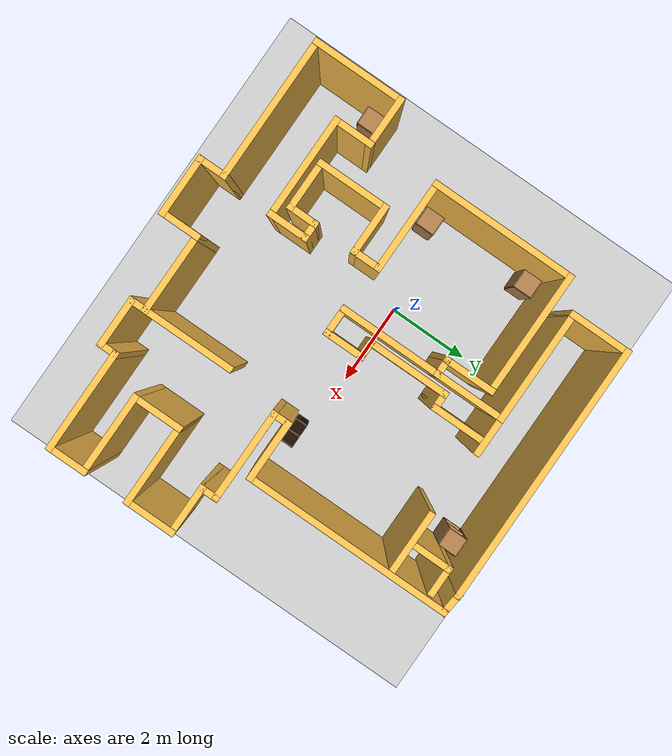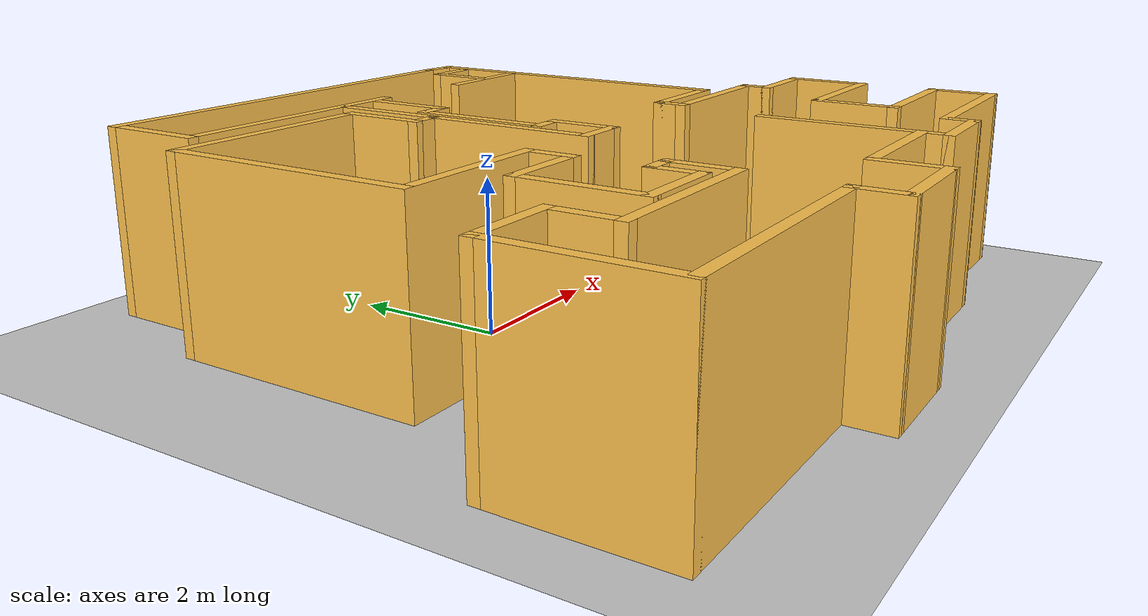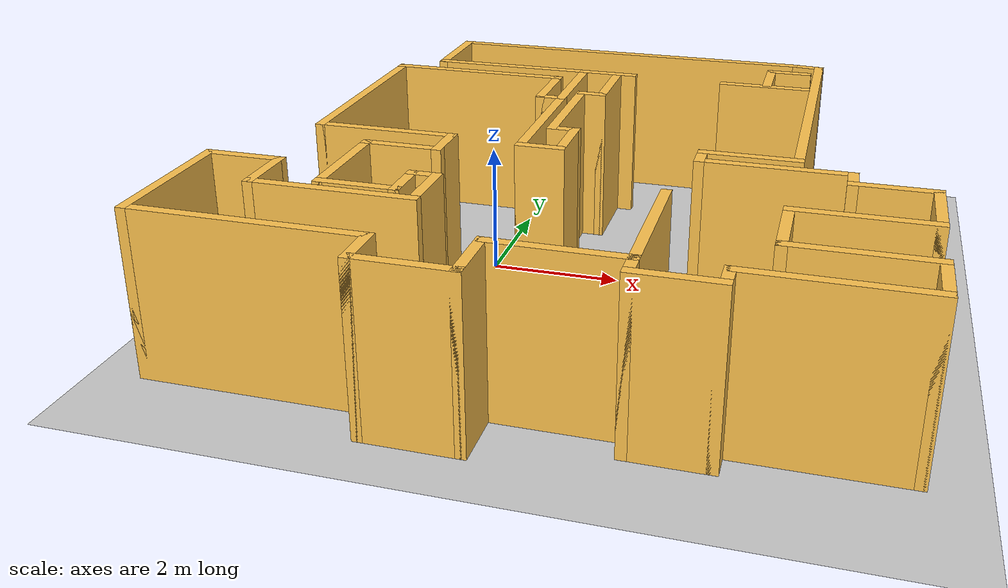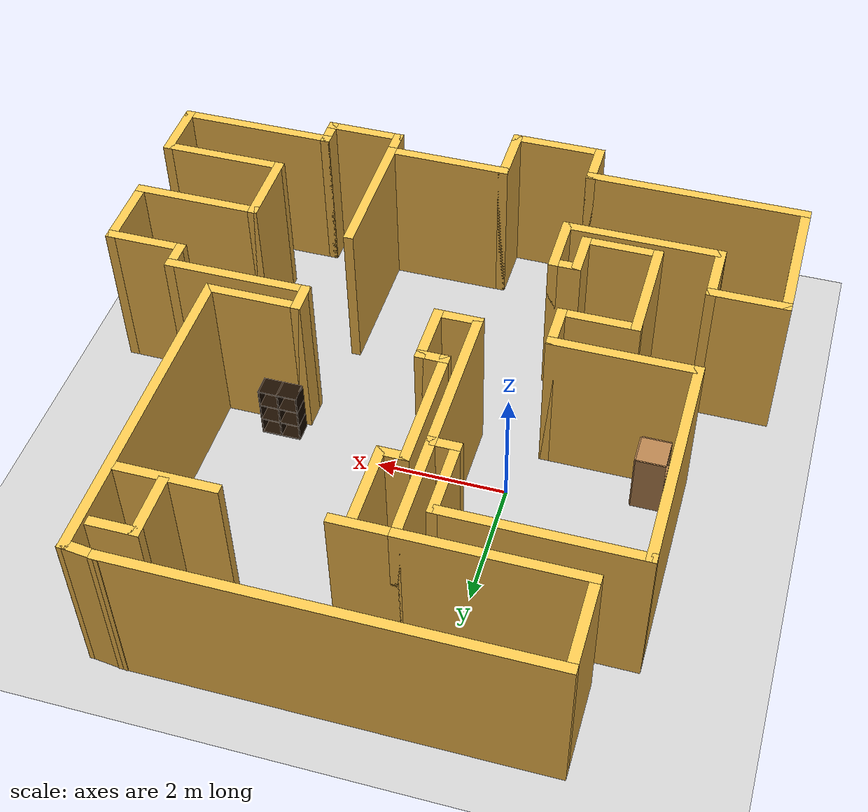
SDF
<sdf version="1.6">
 <world name="default">
  <light name="sun" type="directional">
   <pose>0 0 10 0 -0 0</pose>
   <diffuse>0.8 0.8 0.8 1</diffuse>
   <specular>0.2 0.2 0.2 1</specular>
   <attenuation>
    <range>1000</range>
    <constant>0.9</constant>
    <linear>0.01</linear>
    <quadratic>0.001</quadratic>
   </attenuation>
   <direction>-0.5 0.1 -0.9</direction>
  </light>
  <model name="ground_plane">
   <static>1</static>
   <link name="link">
    <collision name="collision">
     <geometry><plane><normal>0 0 1</normal><size>100 100</size></plane></geometry>
     <surface>
      <contact><collide_bitmask>65535</collide_bitmask></contact>
      <friction><ode><mu>100</mu><mu2>50</mu2></ode></friction>
     </surface>
    </collision>
    <visual name="visual">
     <cast_shadows>0</cast_shadows>
     <geometry><plane><normal>0 0 1</normal><size>100 100</size></plane></geometry>
     <material>
      <script><uri>file://media/materials/scripts/gazebo.material</uri><name>Gazebo/Grey</name></script>
     </material>
    </visual>
   </link>
  </model>
  <gravity>0 0 -9.8</gravity>
  <magnetic_field>6e-06 2.3e-05 -4.2e-05</magnetic_field>
  <atmosphere type="adiabatic"/>
  <physics name="default_physics" default="0" type="ode">
   <max_step_size>0.001</max_step_size>
   <real_time_factor>1</real_time_factor>
   <real_time_update_rate>1000</real_time_update_rate>
  </physics>
  <scene><ambient>0.4 0.4 0.4 1</ambient><background>0.7 0.7 0.7 1</background><shadows>1</shadows></scene>
  <audio><device>default</device></audio>
  <spherical_coordinates>
   <surface_model>EARTH_WGS84</surface_model>
   <latitude_deg>0</latitude_deg>
   <longitude_deg>0</longitude_deg>
   <elevation>0</elevation>
   <heading_deg>0</heading_deg>
  </spherical_coordinates>
  <model name="map_78">
   <pose>1.51541 -0.40154 0 0 -0 0</pose>
   <link name="Wall_0">
    <collision name="Wall_0_Collision">
     <geometry><box><size>6.25 0.15 2.5</size></box></geometry>
     <pose>0 0 1.25 0 -0 0</pose>
    </collision>
    <visual name="Wall_0_Visual">
     <pose>0 0 1.25 0 -0 0</pose>
     <geometry><box><size>6.25 0.15 2.5</size></box></geometry>
     <material>
      <script><uri>file://media/materials/scripts/gazebo.material</uri><name>Gazebo/Grey</name></script>
      <ambient>1 0.764706 0.305882 1</ambient>
     </material>
     <meta><layer>0</layer></meta>
    </visual>
    <pose>-0.35 4.74609 0 0 -0 3.14159</pose>
   </link>
   <link name="Wall_12">
    <collision name="Wall_12_Collision">
     <geometry><box><size>0.75 0.15 2.5</size></box></geometry>
     <pose>0 0 1.25 0 -0 0</pose>
    </collision>
    <visual name="Wall_12_Visual">
     <pose>0 0 1.25 0 -0 0</pose>
     <geometry><box><size>0.75 0.15 2.5</size></box></geometry>
     <material>
      <script><uri>file://media/materials/scripts/gazebo.material</uri><name>Gazebo/Grey</name></script>
      <ambient>1 0.764706 0.305882 1</ambient>
     </material>
     <meta><layer>0</layer></meta>
    </visual>
    <pose>-1.9 -0.753912 0 0 -0 -1.5708</pose>
   </link>
   <link name="Wall_13">
    <collision name="Wall_13_Collision">
     <geometry><box><size>1.25 0.15 2.5</size></box></geometry>
     <pose>0 0 1.25 0 -0 0</pose>
    </collision>
    <visual name="Wall_13_Visual">
     <pose>0 0 1.25 0 -0 0</pose>
     <geometry><box><size>1.25 0.15 2.5</size></box></geometry>
     <material>
      <script><uri>file://media/materials/scripts/gazebo.material</uri><name>Gazebo/Grey</name></script>
      <ambient>1 0.764706 0.305882 1</ambient>
     </material>
     <meta><layer>0</layer></meta>
    </visual>
    <pose>-2.45 -1.05391 0 0 -0 3.14159</pose>
   </link>
   <link name="Wall_14">
    <collision name="Wall_14_Collision">
     <geometry><box><size>1.75 0.15 2.5</size></box></geometry>
     <pose>0 0 1.25 0 -0 0</pose>
    </collision>
    <visual name="Wall_14_Visual">
     <pose>0 0 1.25 0 -0 0</pose>
     <geometry><box><size>1.75 0.15 2.5</size></box></geometry>
     <material>
      <script><uri>file://media/materials/scripts/gazebo.material</uri><name>Gazebo/Grey</name></script>
      <ambient>1 0.764706 0.305882 1</ambient>
     </material>
     <meta><layer>0</layer></meta>
    </visual>
    <pose>-3 -1.85391 0 0 -0 -1.5708</pose>
   </link>
   <link name="Wall_15">
    <collision name="Wall_15_Collision">
     <geometry><box><size>1.25 0.15 2.5</size></box></geometry>
     <pose>0 0 1.25 0 -0 0</pose>
    </collision>
    <visual name="Wall_15_Visual">
     <pose>0 0 1.25 0 -0 0</pose>
     <geometry><box><size>1.25 0.15 2.5</size></box></geometry>
     <material>
      <script><uri>file://media/materials/scripts/gazebo.material</uri><name>Gazebo/Grey</name></script>
      <ambient>1 0.764706 0.305882 1</ambient>
     </material>
     <meta><layer>0</layer></meta>
    </visual>
    <pose>-2.45 -2.65391 0 0 -0 0</pose>
   </link>
   <link name="Wall_16">
    <collision name="Wall_16_Collision">
     <geometry><box><size>0.75 0.15 2.5</size></box></geometry>
     <pose>0 0 1.25 0 -0 0</pose>
    </collision>
    <visual name="Wall_16_Visual">
     <pose>0 0 1.25 0 -0 0</pose>
     <geometry><box><size>0.75 0.15 2.5</size></box></geometry>
     <material>
      <script><uri>file://media/materials/scripts/gazebo.material</uri><name>Gazebo/Grey</name></script>
      <ambient>1 0.764706 0.305882 1</ambient>
     </material>
     <meta><layer>0</layer></meta>
    </visual>
    <pose>-1.9 -2.35391 0 0 -0 1.5708</pose>
   </link>
   <link name="Wall_17">
    <collision name="Wall_17_Collision">
     <geometry><box><size>0.5 0.15 2.5</size></box></geometry>
     <pose>0 0 1.25 0 -0 0</pose>
    </collision>
    <visual name="Wall_17_Visual">
     <pose>0 0 1.25 0 -0 0</pose>
     <geometry><box><size>0.5 0.15 2.5</size></box></geometry>
     <material>
      <script><uri>file://media/materials/scripts/gazebo.material</uri><name>Gazebo/Grey</name></script>
      <ambient>1 0.764706 0.305882 1</ambient>
     </material>
     <meta><layer>0</layer></meta>
    </visual>
    <pose>-1.725 -2.05391 0 0 -0 0</pose>
   </link>
   <link name="Wall_18">
    <collision name="Wall_18_Collision">
     <geometry><box><size>1 0.15 2.5</size></box></geometry>
     <pose>0 0 1.25 0 -0 0</pose>
    </collision>
    <visual name="Wall_18_Visual">
     <pose>0 0 1.25 0 -0 0</pose>
     <geometry><box><size>1 0.15 2.5</size></box></geometry>
     <material>
      <script><uri>file://media/materials/scripts/gazebo.material</uri><name>Gazebo/Grey</name></script>
      <ambient>1 0.764706 0.305882 1</ambient>
     </material>
     <meta><layer>0</layer></meta>
    </visual>
    <pose>-1.55 -2.47891 0 0 -0 -1.5708</pose>
   </link>
   <link name="Wall_19">
    <collision name="Wall_19_Collision">
     <geometry><box><size>2.5 0.15 2.5</size></box></geometry>
     <pose>0 0 1.25 0 -0 0</pose>
    </collision>
    <visual name="Wall_19_Visual">
     <pose>0 0 1.25 0 -0 0</pose>
     <geometry><box><size>2.5 0.15 2.5</size></box></geometry>
     <material>
      <script><uri>file://media/materials/scripts/gazebo.material</uri><name>Gazebo/Grey</name></script>
      <ambient>1 0.764706 0.305882 1</ambient>
     </material>
     <meta><layer>0</layer></meta>
    </visual>
    <pose>-2.725 -2.90391 0 0 -0 3.14159</pose>
   </link>
   <link name="Wall_2">
    <collision name="Wall_2_Collision">
     <geometry><box><size>1.5 0.15 2.5</size></box></geometry>
     <pose>0 0 1.25 0 -0 0</pose>
    </collision>
    <visual name="Wall_2_Visual">
     <pose>0 0 1.25 0 -0 0</pose>
     <geometry><box><size>1.5 0.15 2.5</size></box></geometry>
     <material>
      <script><uri>file://media/materials/scripts/gazebo.material</uri><name>Gazebo/Grey</name></script>
      <ambient>1 0.764706 0.305882 1</ambient>
     </material>
     <meta><layer>0</layer></meta>
    </visual>
    <pose>-3.4 4.07109 0 0 -0 -1.5708</pose>
   </link>
   <link name="Wall_20">
    <collision name="Wall_20_Collision">
     <geometry><box><size>1 0.15 2.5</size></box></geometry>
     <pose>0 0 1.25 0 -0 0</pose>
    </collision>
    <visual name="Wall_20_Visual">
     <pose>0 0 1.25 0 -0 0</pose>
     <geometry><box><size>1 0.15 2.5</size></box></geometry>
     <material>
      <script><uri>file://media/materials/scripts/gazebo.material</uri><name>Gazebo/Grey</name></script>
      <ambient>1 0.764706 0.305882 1</ambient>
     </material>
     <meta><layer>0</layer></meta>
    </visual>
    <pose>-3.9 -2.47891 0 0 -0 1.5708</pose>
   </link>
   <link name="Wall_21">
    <collision name="Wall_21_Collision">
     <geometry><box><size>1.25 0.15 2.5</size></box></geometry>
     <pose>0 0 1.25 0 -0 0</pose>
    </collision>
    <visual name="Wall_21_Visual">
     <pose>0 0 1.25 0 -0 0</pose>
     <geometry><box><size>1.25 0.15 2.5</size></box></geometry>
     <material>
      <script><uri>file://media/materials/scripts/gazebo.material</uri><name>Gazebo/Grey</name></script>
      <ambient>1 0.764706 0.305882 1</ambient>
     </material>
     <meta><layer>0</layer></meta>
    </visual>
    <pose>-4.45 -2.05391 0 0 -0 3.14159</pose>
   </link>
   <link name="Wall_22">
    <collision name="Wall_22_Collision">
     <geometry><box><size>2.25 0.15 2.5</size></box></geometry>
     <pose>0 0 1.25 0 -0 0</pose>
    </collision>
    <visual name="Wall_22_Visual">
     <pose>0 0 1.25 0 -0 0</pose>
     <geometry><box><size>2.25 0.15 2.5</size></box></geometry>
     <material>
      <script><uri>file://media/materials/scripts/gazebo.material</uri><name>Gazebo/Grey</name></script>
      <ambient>1 0.764706 0.305882 1</ambient>
     </material>
     <meta><layer>0</layer></meta>
    </visual>
    <pose>-5 -3.10391 0 0 -0 -1.5708</pose>
   </link>
   <link name="Wall_23">
    <collision name="Wall_23_Collision">
     <geometry><box><size>3.5 0.15 2.5</size></box></geometry>
     <pose>0 0 1.25 0 -0 0</pose>
    </collision>
    <visual name="Wall_23_Visual">
     <pose>0 0 1.25 0 -0 0</pose>
     <geometry><box><size>3.5 0.15 2.5</size></box></geometry>
     <material>
      <script><uri>file://media/materials/scripts/gazebo.material</uri><name>Gazebo/Grey</name></script>
      <ambient>1 0.764706 0.305882 1</ambient>
     </material>
     <meta><layer>0</layer></meta>
    </visual>
    <pose>-3.325 -4.15391 0 0 -0 0</pose>
   </link>
   <link name="Wall_24">
    <collision name="Wall_24_Collision">
     <geometry><box><size>0.75 0.15 2.5</size></box></geometry>
     <pose>0 0 1.25 0 -0 0</pose>
    </collision>
    <visual name="Wall_24_Visual">
     <pose>0 0 1.25 0 -0 0</pose>
     <geometry><box><size>0.75 0.15 2.5</size></box></geometry>
     <material>
      <script><uri>file://media/materials/scripts/gazebo.material</uri><name>Gazebo/Grey</name></script>
      <ambient>1 0.764706 0.305882 1</ambient>
     </material>
     <meta><layer>0</layer></meta>
    </visual>
    <pose>-1.65 -4.45391 0 0 -0 -1.5708</pose>
   </link>
   <link name="Wall_25">
    <collision name="Wall_25_Collision">
     <geometry><box><size>1.5 0.15 2.5</size></box></geometry>
     <pose>0 0 1.25 0 -0 0</pose>
    </collision>
    <visual name="Wall_25_Visual">
     <pose>0 0 1.25 0 -0 0</pose>
     <geometry><box><size>1.5 0.15 2.5</size></box></geometry>
     <material>
      <script><uri>file://media/materials/scripts/gazebo.material</uri><name>Gazebo/Grey</name></script>
      <ambient>1 0.764706 0.305882 1</ambient>
     </material>
     <meta><layer>0</layer></meta>
    </visual>
    <pose>-0.975 -4.75391 0 0 -0 0</pose>
   </link>
   <link name="Wall_26">
    <collision name="Wall_26_Collision">
     <geometry><box><size>1 0.15 2.5</size></box></geometry>
     <pose>0 0 1.25 0 -0 0</pose>
    </collision>
    <visual name="Wall_26_Visual">
     <pose>0 0 1.25 0 -0 0</pose>
     <geometry><box><size>1 0.15 2.5</size></box></geometry>
     <material>
      <script><uri>file://media/materials/scripts/gazebo.material</uri><name>Gazebo/Grey</name></script>
      <ambient>1 0.764706 0.305882 1</ambient>
     </material>
     <meta><layer>0</layer></meta>
    </visual>
    <pose>-0.3 -4.32891 0 0 -0 1.5708</pose>
   </link>
   <link name="Wall_27">
    <collision name="Wall_27_Collision">
     <geometry><box><size>2 0.15 2.5</size></box></geometry>
     <pose>0 0 1.25 0 -0 0</pose>
    </collision>
    <visual name="Wall_27_Visual">
     <pose>0 0 1.25 0 -0 0</pose>
     <geometry><box><size>2 0.15 2.5</size></box></geometry>
     <material>
      <script><uri>file://media/materials/scripts/gazebo.material</uri><name>Gazebo/Grey</name></script>
      <ambient>1 0.764706 0.305882 1</ambient>
     </material>
     <meta><layer>0</layer></meta>
    </visual>
    <pose>0.625 -3.90391 0 0 -0 0</pose>
   </link>
   <link name="Wall_28">
    <collision name="Wall_28_Collision">
     <geometry><box><size>0.5 0.15 2.5</size></box></geometry>
     <pose>0 0 1.25 0 -0 0</pose>
    </collision>
    <visual name="Wall_28_Visual">
     <pose>0 0 1.25 0 -0 0</pose>
     <geometry><box><size>0.5 0.15 2.5</size></box></geometry>
     <material>
      <script><uri>file://media/materials/scripts/gazebo.material</uri><name>Gazebo/Grey</name></script>
      <ambient>1 0.764706 0.305882 1</ambient>
     </material>
     <meta><layer>0</layer></meta>
    </visual>
    <pose>1.55 -4.07891 0 0 -0 -1.5708</pose>
   </link>
   <link name="Wall_29">
    <collision name="Wall_29_Collision">
     <geometry><box><size>1.25 0.15 2.5</size></box></geometry>
     <pose>0 0 1.25 0 -0 0</pose>
    </collision>
    <visual name="Wall_29_Visual">
     <pose>0 0 1.25 0 -0 0</pose>
     <geometry><box><size>1.25 0.15 2.5</size></box></geometry>
     <material>
      <script><uri>file://media/materials/scripts/gazebo.material</uri><name>Gazebo/Grey</name></script>
      <ambient>1 0.764706 0.305882 1</ambient>
     </material>
     <meta><layer>0</layer></meta>
    </visual>
    <pose>2.1 -4.25391 0 0 -0 0</pose>
   </link>
   <link name="Wall_3">
    <collision name="Wall_3_Collision">
     <geometry><box><size>2.75 0.15 2.5</size></box></geometry>
     <pose>0 0 1.25 0 -0 0</pose>
    </collision>
    <visual name="Wall_3_Visual">
     <pose>0 0 1.25 0 -0 0</pose>
     <geometry><box><size>2.75 0.15 2.5</size></box></geometry>
     <material>
      <script><uri>file://media/materials/scripts/gazebo.material</uri><name>Gazebo/Grey</name></script>
      <ambient>1 0.764706 0.305882 1</ambient>
     </material>
     <meta><layer>0</layer></meta>
    </visual>
    <pose>-2.1 3.39609 0 0 -0 0</pose>
   </link>
   <link name="Wall_30">
    <collision name="Wall_30_Collision">
     <geometry><box><size>0.5 0.15 2.5</size></box></geometry>
     <pose>0 0 1.25 0 -0 0</pose>
    </collision>
    <visual name="Wall_30_Visual">
     <pose>0 0 1.25 0 -0 0</pose>
     <geometry><box><size>0.5 0.15 2.5</size></box></geometry>
     <material>
      <script><uri>file://media/materials/scripts/gazebo.material</uri><name>Gazebo/Grey</name></script>
      <ambient>1 0.764706 0.305882 1</ambient>
     </material>
     <meta><layer>0</layer></meta>
    </visual>
    <pose>2.65 -4.07891 0 0 -0 1.5708</pose>
   </link>
   <link name="Wall_31">
    <collision name="Wall_31_Collision">
     <geometry><box><size>2.5 0.15 2.5</size></box></geometry>
     <pose>0 0 1.25 0 -0 0</pose>
    </collision>
    <visual name="Wall_31_Visual">
     <pose>0 0 1.25 0 -0 0</pose>
     <geometry><box><size>2.5 0.15 2.5</size></box></geometry>
     <material>
      <script><uri>file://media/materials/scripts/gazebo.material</uri><name>Gazebo/Grey</name></script>
      <ambient>1 0.764706 0.305882 1</ambient>
     </material>
     <meta><layer>0</layer></meta>
    </visual>
    <pose>3.825 -3.90391 0 0 -0 0</pose>
   </link>
   <link name="Wall_32">
    <collision name="Wall_32_Collision">
     <geometry><box><size>1 0.15 2.5</size></box></geometry>
     <pose>0 0 1.25 0 -0 0</pose>
    </collision>
    <visual name="Wall_32_Visual">
     <pose>0 0 1.25 0 -0 0</pose>
     <geometry><box><size>1 0.15 2.5</size></box></geometry>
     <material>
      <script><uri>file://media/materials/scripts/gazebo.material</uri><name>Gazebo/Grey</name></script>
      <ambient>1 0.764706 0.305882 1</ambient>
     </material>
     <meta><layer>0</layer></meta>
    </visual>
    <pose>5 -3.47891 0 0 -0 1.5708</pose>
   </link>
   <link name="Wall_33">
    <collision name="Wall_33_Collision">
     <geometry><box><size>2 0.15 2.5</size></box></geometry>
     <pose>0 0 1.25 0 -0 0</pose>
    </collision>
    <visual name="Wall_33_Visual">
     <pose>0 0 1.25 0 -0 0</pose>
     <geometry><box><size>2 0.15 2.5</size></box></geometry>
     <material>
      <script><uri>file://media/materials/scripts/gazebo.material</uri><name>Gazebo/Grey</name></script>
      <ambient>1 0.764706 0.305882 1</ambient>
     </material>
     <meta><layer>0</layer></meta>
    </visual>
    <pose>4.075 -3.05391 0 0 -0 3.14159</pose>
   </link>
   <link name="Wall_34">
    <collision name="Wall_34_Collision">
     <geometry><box><size>1.25 0.15 2.5</size></box></geometry>
     <pose>0 0 1.25 0 -0 0</pose>
    </collision>
    <visual name="Wall_34_Visual">
     <pose>0 0 1.25 0 -0 0</pose>
     <geometry><box><size>1.25 0.15 2.5</size></box></geometry>
     <material>
      <script><uri>file://media/materials/scripts/gazebo.material</uri><name>Gazebo/Grey</name></script>
      <ambient>1 0.764706 0.305882 1</ambient>
     </material>
     <meta><layer>0</layer></meta>
    </visual>
    <pose>3.15 -2.50391 0 0 -0 1.5708</pose>
   </link>
   <link name="Wall_35">
    <collision name="Wall_35_Collision">
     <geometry><box><size>2 0.15 2.5</size></box></geometry>
     <pose>0 0 1.25 0 -0 0</pose>
    </collision>
    <visual name="Wall_35_Visual">
     <pose>0 0 1.25 0 -0 0</pose>
     <geometry><box><size>2 0.15 2.5</size></box></geometry>
     <material>
      <script><uri>file://media/materials/scripts/gazebo.material</uri><name>Gazebo/Grey</name></script>
      <ambient>1 0.764706 0.305882 1</ambient>
     </material>
     <meta><layer>0</layer></meta>
    </visual>
    <pose>4.075 -1.95391 0 0 -0 0</pose>
   </link>
   <link name="Wall_36">
    <collision name="Wall_36_Collision">
     <geometry><box><size>1.25 0.15 2.5</size></box></geometry>
     <pose>0 0 1.25 0 -0 0</pose>
    </collision>
    <visual name="Wall_36_Visual">
     <pose>0 0 1.25 0 -0 0</pose>
     <geometry><box><size>1.25 0.15 2.5</size></box></geometry>
     <material>
      <script><uri>file://media/materials/scripts/gazebo.material</uri><name>Gazebo/Grey</name></script>
      <ambient>1 0.764706 0.305882 1</ambient>
     </material>
     <meta><layer>0</layer></meta>
    </visual>
    <pose>5 -1.40391 0 0 -0 1.5708</pose>
   </link>
   <link name="Wall_37">
    <collision name="Wall_37_Collision">
     <geometry><box><size>1.25 0.15 2.5</size></box></geometry>
     <pose>0 0 1.25 0 -0 0</pose>
    </collision>
    <visual name="Wall_37_Visual">
     <pose>0 0 1.25 0 -0 0</pose>
     <geometry><box><size>1.25 0.15 2.5</size></box></geometry>
     <material>
      <script><uri>file://media/materials/scripts/gazebo.material</uri><name>Gazebo/Grey</name></script>
      <ambient>1 0.764706 0.305882 1</ambient>
     </material>
     <meta><layer>0</layer></meta>
    </visual>
    <pose>4.45 -0.853912 0 0 -0 3.14159</pose>
   </link>
   <link name="Wall_38">
    <collision name="Wall_38_Collision">
     <geometry><box><size>0.5 0.15 2.5</size></box></geometry>
     <pose>0 0 1.25 0 -0 0</pose>
    </collision>
    <visual name="Wall_38_Visual">
     <pose>0 0 1.25 0 -0 0</pose>
     <geometry><box><size>0.5 0.15 2.5</size></box></geometry>
     <material>
      <script><uri>file://media/materials/scripts/gazebo.material</uri><name>Gazebo/Grey</name></script>
      <ambient>1 0.764706 0.305882 1</ambient>
     </material>
     <meta><layer>0</layer></meta>
    </visual>
    <pose>3.9 -0.678912 0 0 -0 1.5708</pose>
   </link>
   <link name="Wall_39">
    <collision name="Wall_39_Collision">
     <geometry><box><size>2.25 0.15 2.5</size></box></geometry>
     <pose>0 0 1.25 0 -0 0</pose>
    </collision>
    <visual name="Wall_39_Visual">
     <pose>0 0 1.25 0 -0 0</pose>
     <geometry><box><size>2.25 0.15 2.5</size></box></geometry>
     <material>
      <script><uri>file://media/materials/scripts/gazebo.material</uri><name>Gazebo/Grey</name></script>
      <ambient>1 0.764706 0.305882 1</ambient>
     </material>
     <meta><layer>0</layer></meta>
    </visual>
    <pose>2.85 -0.503912 0 0 -0 3.14159</pose>
   </link>
   <link name="Wall_4">
    <collision name="Wall_4_Collision">
     <geometry><box><size>1.75 0.15 2.5</size></box></geometry>
     <pose>0 0 1.25 0 -0 0</pose>
    </collision>
    <visual name="Wall_4_Visual">
     <pose>0 0 1.25 0 -0 0</pose>
     <geometry><box><size>1.75 0.15 2.5</size></box></geometry>
     <material>
      <script><uri>file://media/materials/scripts/gazebo.material</uri><name>Gazebo/Grey</name></script>
      <ambient>1 0.764706 0.305882 1</ambient>
     </material>
     <meta><layer>0</layer></meta>
    </visual>
    <pose>-0.8 2.59609 0 0 -0 -1.5708</pose>
   </link>
   <link name="Wall_46">
    <collision name="Wall_46_Collision">
     <geometry><box><size>0.5 0.15 2.5</size></box></geometry>
     <pose>0 0 1.25 0 -0 0</pose>
    </collision>
    <visual name="Wall_46_Visual">
     <pose>0 0 1.25 0 -0 0</pose>
     <geometry><box><size>0.5 0.15 2.5</size></box></geometry>
     <material>
      <script><uri>file://media/materials/scripts/gazebo.material</uri><name>Gazebo/Grey</name></script>
      <ambient>1 0.764706 0.305882 1</ambient>
     </material>
     <meta><layer>0</layer></meta>
    </visual>
    <pose>1.8 -0.328912 0 0 -0 1.5708</pose>
   </link>
   <link name="Wall_47">
    <collision name="Wall_47_Collision">
     <geometry><box><size>1.5 0.15 2.5</size></box></geometry>
     <pose>0 0 1.25 0 -0 0</pose>
    </collision>
    <visual name="Wall_47_Visual">
     <pose>0 0 1.25 0 -0 0</pose>
     <geometry><box><size>1.5 0.15 2.5</size></box></geometry>
     <material>
      <script><uri>file://media/materials/scripts/gazebo.material</uri><name>Gazebo/Grey</name></script>
      <ambient>1 0.764706 0.305882 1</ambient>
     </material>
     <meta><layer>0</layer></meta>
    </visual>
    <pose>2.475 -0.153912 0 0 -0 0</pose>
   </link>
   <link name="Wall_5">
    <collision name="Wall_5_Collision">
     <geometry><box><size>0.5 0.15 2.5</size></box></geometry>
     <pose>0 0 1.25 0 -0 0</pose>
    </collision>
    <visual name="Wall_5_Visual">
     <pose>0 0 1.25 0 -0 0</pose>
     <geometry><box><size>0.5 0.15 2.5</size></box></geometry>
     <material>
      <script><uri>file://media/materials/scripts/gazebo.material</uri><name>Gazebo/Grey</name></script>
      <ambient>1 0.764706 0.305882 1</ambient>
     </material>
     <meta><layer>0</layer></meta>
    </visual>
    <pose>-0.975 1.79609 0 0 -0 3.14159</pose>
   </link>
   <link name="Wall_50">
    <collision name="Wall_50_Collision">
     <geometry><box><size>5 0.15 2.5</size></box></geometry>
     <pose>0 0 1.25 0 -0 0</pose>
    </collision>
    <visual name="Wall_50_Visual">
     <pose>0 0 1.25 0 -0 0</pose>
     <geometry><box><size>5 0.15 2.5</size></box></geometry>
     <material>
      <script><uri>file://media/materials/scripts/gazebo.material</uri><name>Gazebo/Grey</name></script>
      <ambient>1 0.764706 0.305882 1</ambient>
     </material>
     <meta><layer>0</layer></meta>
    </visual>
    <pose>3.15 2.27109 0 0 -0 1.5708</pose>
   </link>
   <link name="Wall_51">
    <collision name="Wall_51_Collision">
     <geometry><box><size>0.602769 0.15 2.5</size></box></geometry>
     <pose>0 0 1.25 0 -0 0</pose>
    </collision>
    <visual name="Wall_51_Visual">
     <pose>0 0 1.25 0 -0 0</pose>
     <geometry><box><size>0.602769 0.15 2.5</size></box></geometry>
     <material>
      <script><uri>file://media/materials/scripts/gazebo.material</uri><name>Gazebo/Grey</name></script>
      <ambient>1 0.764706 0.305882 1</ambient>
     </material>
     <meta><layer>0</layer></meta>
    </visual>
    <pose>2.925 4.72109 0 0 -0 3.03093</pose>
   </link>
   <link name="Wall_53">
    <collision name="Wall_53_Collision">
     <geometry><box><size>1.5 0.15 2.5</size></box></geometry>
     <pose>0 0 1.25 0 -0 0</pose>
    </collision>
    <visual name="Wall_53_Visual">
     <pose>0 0 1.25 0 -0 0</pose>
     <geometry><box><size>1.5 0.15 2.5</size></box></geometry>
     <material>
      <script><uri>file://media/materials/scripts/gazebo.material</uri><name>Gazebo/Grey</name></script>
      <ambient>1 0.764706 0.305882 1</ambient>
     </material>
     <meta><layer>0</layer></meta>
    </visual>
    <pose>2.33759 3.33628 0 0 -0 0</pose>
   </link>
   <link name="Wall_55">
    <collision name="Wall_55_Collision">
     <geometry><box><size>0.75 0.15 2.5</size></box></geometry>
     <pose>0 0 1.25 0 -0 0</pose>
    </collision>
    <visual name="Wall_55_Visual">
     <pose>0 0 1.25 0 -0 0</pose>
     <geometry><box><size>0.75 0.15 2.5</size></box></geometry>
     <material>
      <script><uri>file://media/materials/scripts/gazebo.material</uri><name>Gazebo/Grey</name></script>
      <ambient>1 0.764706 0.305882 1</ambient>
     </material>
     <meta><layer>0</layer></meta>
    </visual>
    <pose>2.666 4.26729 0 0 -0 3.14159</pose>
   </link>
   <link name="Wall_56">
    <collision name="Wall_56_Collision">
     <geometry><box><size>1 0.15 2.5</size></box></geometry>
     <pose>0 0 1.25 0 -0 0</pose>
    </collision>
    <visual name="Wall_56_Visual">
     <pose>0 0 1.25 0 -0 0</pose>
     <geometry><box><size>1 0.15 2.5</size></box></geometry>
     <material>
      <script><uri>file://media/materials/scripts/gazebo.material</uri><name>Gazebo/Grey</name></script>
      <ambient>1 0.764706 0.305882 1</ambient>
     </material>
     <meta><layer>0</layer></meta>
    </visual>
    <pose>2.366 3.84228 0 0 -0 -1.5708</pose>
   </link>
   <link name="Wall_58">
    <collision name="Wall_58_Collision">
     <geometry><box><size>1 0.15 2.5</size></box></geometry>
     <pose>0 0 1.25 0 -0 0</pose>
    </collision>
    <visual name="Wall_58_Visual">
     <pose>0 0 1.25 0 -0 0</pose>
     <geometry><box><size>1 0.15 2.5</size></box></geometry>
     <material>
      <script><uri>file://media/materials/scripts/gazebo.material</uri><name>Gazebo/Grey</name></script>
      <ambient>1 0.764706 0.305882 1</ambient>
     </material>
     <meta><layer>0</layer></meta>
    </visual>
    <pose>-0.375 3.39609 0 0 -0 0</pose>
   </link>
   <link name="Wall_6">
    <collision name="Wall_6_Collision">
     <geometry><box><size>1.25 0.15 2.5</size></box></geometry>
     <pose>0 0 1.25 0 -0 0</pose>
    </collision>
    <visual name="Wall_6_Visual">
     <pose>0 0 1.25 0 -0 0</pose>
     <geometry><box><size>1.25 0.15 2.5</size></box></geometry>
     <material>
      <script><uri>file://media/materials/scripts/gazebo.material</uri><name>Gazebo/Grey</name></script>
      <ambient>1 0.764706 0.305882 1</ambient>
     </material>
     <meta><layer>0</layer></meta>
    </visual>
    <pose>-1.15 2.34609 0 0 -0 1.5708</pose>
   </link>
   <link name="Wall_60">
    <collision name="Wall_60_Collision">
     <geometry><box><size>2.5 0.15 2.5</size></box></geometry>
     <pose>0 0 1.25 0 -0 0</pose>
    </collision>
    <visual name="Wall_60_Visual">
     <pose>0 0 1.25 0 -0 0</pose>
     <geometry><box><size>2.5 0.15 2.5</size></box></geometry>
     <material>
      <script><uri>file://media/materials/scripts/gazebo.material</uri><name>Gazebo/Grey</name></script>
      <ambient>1 0.764706 0.305882 1</ambient>
     </material>
     <meta><layer>0</layer></meta>
    </visual>
    <pose>-0.8 0.621088 0 0 -0 -1.5708</pose>
   </link>
   <link name="Wall_61">
    <collision name="Wall_61_Collision">
     <geometry><box><size>0.75 0.15 2.5</size></box></geometry>
     <pose>0 0 1.25 0 -0 0</pose>
    </collision>
    <visual name="Wall_61_Visual">
     <pose>0 0 1.25 0 -0 0</pose>
     <geometry><box><size>0.75 0.15 2.5</size></box></geometry>
     <material>
      <script><uri>file://media/materials/scripts/gazebo.material</uri><name>Gazebo/Grey</name></script>
      <ambient>1 0.764706 0.305882 1</ambient>
     </material>
     <meta><layer>0</layer></meta>
    </visual>
    <pose>-0.5 -0.553912 0 0 -0 0</pose>
   </link>
   <link name="Wall_62">
    <collision name="Wall_62_Collision">
     <geometry><box><size>1 0.15 2.5</size></box></geometry>
     <pose>0 0 1.25 0 -0 0</pose>
    </collision>
    <visual name="Wall_62_Visual">
     <pose>0 0 1.25 0 -0 0</pose>
     <geometry><box><size>1 0.15 2.5</size></box></geometry>
     <material>
      <script><uri>file://media/materials/scripts/gazebo.material</uri><name>Gazebo/Grey</name></script>
      <ambient>1 0.764706 0.305882 1</ambient>
     </material>
     <meta><layer>0</layer></meta>
    </visual>
    <pose>-0.2 -0.128912 0 0 -0 1.5708</pose>
   </link>
   <link name="Wall_63">
    <collision name="Wall_63_Collision">
     <geometry><box><size>0.5 0.15 2.5</size></box></geometry>
     <pose>0 0 1.25 0 -0 0</pose>
    </collision>
    <visual name="Wall_63_Visual">
     <pose>0 0 1.25 0 -0 0</pose>
     <geometry><box><size>0.5 0.15 2.5</size></box></geometry>
     <material>
      <script><uri>file://media/materials/scripts/gazebo.material</uri><name>Gazebo/Grey</name></script>
      <ambient>1 0.764706 0.305882 1</ambient>
     </material>
     <meta><layer>0</layer></meta>
    </visual>
    <pose>-0.375 0.296088 0 0 -0 3.14159</pose>
   </link>
   <link name="Wall_64">
    <collision name="Wall_64_Collision">
     <geometry><box><size>2 0.15 2.5</size></box></geometry>
     <pose>0 0 1.25 0 -0 0</pose>
    </collision>
    <visual name="Wall_64_Visual">
     <pose>0 0 1.25 0 -0 0</pose>
     <geometry><box><size>2 0.15 2.5</size></box></geometry>
     <material>
      <script><uri>file://media/materials/scripts/gazebo.material</uri><name>Gazebo/Grey</name></script>
      <ambient>1 0.764706 0.305882 1</ambient>
     </material>
     <meta><layer>0</layer></meta>
    </visual>
    <pose>-0.55 1.22109 0 0 -0 1.5708</pose>
   </link>
   <link name="Wall_65">
    <collision name="Wall_65_Collision">
     <geometry><box><size>0.5 0.15 2.5</size></box></geometry>
     <pose>0 0 1.25 0 -0 0</pose>
    </collision>
    <visual name="Wall_65_Visual">
     <pose>0 0 1.25 0 -0 0</pose>
     <geometry><box><size>0.5 0.15 2.5</size></box></geometry>
     <material>
      <script><uri>file://media/materials/scripts/gazebo.material</uri><name>Gazebo/Grey</name></script>
      <ambient>1 0.764706 0.305882 1</ambient>
     </material>
     <meta><layer>0</layer></meta>
    </visual>
    <pose>-0.375 2.14609 0 0 -0 0</pose>
   </link>
   <link name="Wall_66">
    <collision name="Wall_66_Collision">
     <geometry><box><size>1.25 0.15 2.5</size></box></geometry>
     <pose>0 0 1.25 0 -0 0</pose>
    </collision>
    <visual name="Wall_66_Visual">
     <pose>0 0 1.25 0 -0 0</pose>
     <geometry><box><size>1.25 0.15 2.5</size></box></geometry>
     <material>
      <script><uri>file://media/materials/scripts/gazebo.material</uri><name>Gazebo/Grey</name></script>
      <ambient>1 0.764706 0.305882 1</ambient>
     </material>
     <meta><layer>0</layer></meta>
    </visual>
    <pose>-0.2 2.69609 0 0 -0 1.5708</pose>
   </link>
   <link name="Wall_69">
    <collision name="Wall_69_Collision">
     <geometry><box><size>2.25 0.15 2.5</size></box></geometry>
     <pose>0 0 1.25 0 -0 0</pose>
    </collision>
    <visual name="Wall_69_Visual">
     <pose>0 0 1.25 0 -0 0</pose>
     <geometry><box><size>2.25 0.15 2.5</size></box></geometry>
     <material>
      <script><uri>file://media/materials/scripts/gazebo.material</uri><name>Gazebo/Grey</name></script>
      <ambient>1 0.764706 0.305882 1</ambient>
     </material>
     <meta><layer>0</layer></meta>
    </visual>
    <pose>1.55 -2.85391 0 0 -0 1.5708</pose>
   </link>
   <link name="Wall_7">
    <collision name="Wall_7_Collision">
     <geometry><box><size>3 0.15 2.5</size></box></geometry>
     <pose>0 0 1.25 0 -0 0</pose>
    </collision>
    <visual name="Wall_7_Visual">
     <pose>0 0 1.25 0 -0 0</pose>
     <geometry><box><size>3 0.15 2.5</size></box></geometry>
     <material>
      <script><uri>file://media/materials/scripts/gazebo.material</uri><name>Gazebo/Grey</name></script>
      <ambient>1 0.764706 0.305882 1</ambient>
     </material>
     <meta><layer>0</layer></meta>
    </visual>
    <pose>-2.575 2.89609 0 0 -0 3.14159</pose>
   </link>
   <link name="Wall_8">
    <collision name="Wall_8_Collision">
     <geometry><box><size>3.5 0.15 2.5</size></box></geometry>
     <pose>0 0 1.25 0 -0 0</pose>
    </collision>
    <visual name="Wall_8_Visual">
     <pose>0 0 1.25 0 -0 0</pose>
     <geometry><box><size>3.5 0.15 2.5</size></box></geometry>
     <material>
      <script><uri>file://media/materials/scripts/gazebo.material</uri><name>Gazebo/Grey</name></script>
      <ambient>1 0.764706 0.305882 1</ambient>
     </material>
     <meta><layer>0</layer></meta>
    </visual>
    <pose>-4 1.22109 0 0 -0 -1.5708</pose>
   </link>
   <link name="Wall_9">
    <collision name="Wall_9_Collision">
     <geometry><box><size>2.25 0.15 2.5</size></box></geometry>
     <pose>0 0 1.25 0 -0 0</pose>
    </collision>
    <visual name="Wall_9_Visual">
     <pose>0 0 1.25 0 -0 0</pose>
     <geometry><box><size>2.25 0.15 2.5</size></box></geometry>
     <material>
      <script><uri>file://media/materials/scripts/gazebo.material</uri><name>Gazebo/Grey</name></script>
      <ambient>1 0.764706 0.305882 1</ambient>
     </material>
     <meta><layer>0</layer></meta>
    </visual>
    <pose>-2.95 -0.453912 0 0 -0 0</pose>
   </link>
   <static>1</static>
  </model>
  <model name="cabinet">
   <static>1</static>
   <link name="cabinet_bottom_plate">
    <inertial>
     <pose>0 0 -1 0 -0 0</pose>
     <inertia><ixx>2.05</ixx><ixy>0</ixy><ixz>0</ixz><iyy>2.05</iyy><iyz>0</iyz><izz>2.05</izz></inertia>
     <mass>25</mass>
    </inertial>
    <collision name="cabinet_bottom_plate_geom">
     <pose>0 0 0.01 0 -0 0</pose>
     <geometry><box><size>0.45 0.45 0.02</size></box></geometry>
    </collision>
    <visual name="cabinet_bottom_plate_geom_visual">
     <pose>0 0 0.01 0 -0 0</pose>
     <geometry><box><size>0.45 0.45 0.02</size></box></geometry>
     <material>
      <script><uri>file://media/materials/scripts/gazebo.material</uri><name>Gazebo/Wood</name></script>
     </material>
    </visual>
    <collision name="cabinet_bottom_plate_geom_cabinet_back_plate">
     <pose>0.235 0 0.51 0 -0 0</pose>
     <geometry><box><size>0.02 0.45 1.02</size></box></geometry>
    </collision>
    <visual name="cabinet_bottom_plate_geom_cabinet_back_plate_visual">
     <pose>0.235 0 0.51 0 -0 0</pose>
     <geometry><box><size>0.02 0.45 1.02</size></box></geometry>
     <material>
      <script><uri>file://media/materials/scripts/gazebo.material</uri><name>Gazebo/Wood</name></script>
     </material>
    </visual>
    <collision name="cabinet_bottom_plate_geom_cabinet_left_plate">
     <pose>0 0.235 0.51 0 -0 0</pose>
     <geometry><box><size>0.45 0.02 1.02</size></box></geometry>
    </collision>
    <visual name="cabinet_bottom_plate_geom_cabinet_left_plate_visual">
     <pose>0 0.235 0.51 0 -0 0</pose>
     <geometry><box><size>0.45 0.02 1.02</size></box></geometry>
     <material>
      <script><uri>file://media/materials/scripts/gazebo.material</uri><name>Gazebo/Wood</name></script>
     </material>
    </visual>
    <collision name="cabinet_bottom_plate_geom_cabinet_middle_plate">
     <pose>0 0 0.51 0 -0 0</pose>
     <geometry><box><size>0.45 0.45 0.02</size></box></geometry>
    </collision>
    <visual name="cabinet_bottom_plate_geom_cabinet_middle_plate_visual">
     <pose>0 0 0.51 0 -0 0</pose>
     <geometry><box><size>0.45 0.45 0.02</size></box></geometry>
     <material>
      <script><uri>file://media/materials/scripts/gazebo.material</uri><name>Gazebo/Wood</name></script>
     </material>
    </visual>
    <collision name="cabinet_bottom_plate_geom_cabinet_right_plate">
     <pose>0 -0.235 0.51 0 -0 0</pose>
     <geometry><box><size>0.45 0.02 1.02</size></box></geometry>
    </collision>
    <visual name="cabinet_bottom_plate_geom_cabinet_right_plate_visual">
     <pose>0 -0.235 0.51 0 -0 0</pose>
     <geometry><box><size>0.45 0.02 1.02</size></box></geometry>
     <material>
      <script><uri>file://media/materials/scripts/gazebo.material</uri><name>Gazebo/Wood</name></script>
     </material>
    </visual>
    <collision name="cabinet_bottom_plate_geom_cabinet_top_plate">
     <pose>0 0 1.01 0 -0 0</pose>
     <geometry><box><size>0.45 0.45 0.02</size></box></geometry>
    </collision>
    <visual name="cabinet_bottom_plate_geom_cabinet_top_plate_visual">
     <pose>0 0 1.01 0 -0 0</pose>
     <geometry><box><size>0.45 0.45 0.02</size></box></geometry>
     <material>
      <script><uri>file://media/materials/scripts/gazebo.material</uri><name>Gazebo/Wood</name></script>
     </material>
    </visual>
   </link>
   <pose>-3.15282 -2.87534 0 0 -0 0</pose>
  </model>
  <model name="6_Cube_StorageE">
   <link name="Wall_0">
    <pose>0 0 0.01 0 -0 0</pose>
    <inertial>
     <mass>1.6201</mass>
     <inertia><ixx>0.0119</ixx><iyy>0.0631</iyy><izz>0.0513</izz><ixy>0</ixy><ixz>0</ixz><iyz>0</iyz></inertia>
    </inertial>
    <collision name="Wall_0_Collision"><geometry><box><size>0.616 0.296 0.02</size></box></geometry></collision>
    <visual name="Wall_0_Visual">
     <geometry><box><size>0.616 0.296 0.02</size></box></geometry>
     <material>
      <script><uri>file://media/materials/scripts/gazebo.material</uri><name>Gazebo/Grey</name></script>
      <ambient>0.105882 0.0509804 0 1</ambient>
     </material>
    </visual>
   </link>
   <joint name="0_2" type="fixed">
    <pose>-0.308 0 0 0 -0 0</pose>
    <parent>Wall_2</parent>
    <child>Wall_0</child>
    <axis>
     <xyz>1 0 0</xyz>
     <use_parent_model_frame>0</use_parent_model_frame>
     <limit><lower>-1e+16</lower><upper>1e+16</upper></limit>
    </axis>
   </joint>
   <joint name="0_12" type="fixed">
    <parent>Wall_12</parent>
    <child>Wall_0</child>
    <axis>
     <xyz>0 0 1</xyz>
     <use_parent_model_frame>0</use_parent_model_frame>
     <limit><lower>-1e+16</lower><upper>1e+16</upper></limit>
    </axis>
   </joint>
   <joint name="0_4" type="fixed">
    <pose>0.308 0 0 0 -0 0</pose>
    <parent>Wall_4</parent>
    <child>Wall_0</child>
    <axis>
     <xyz>1 0 0</xyz>
     <use_parent_model_frame>0</use_parent_model_frame>
     <limit><lower>-1e+16</lower><upper>1e+16</upper></limit>
    </axis>
   </joint>
   <link name="Wall_10">
    <pose>0 0 0.61 0 -0 0</pose>
    <inertial>
     <mass>1.6201</mass>
     <inertia><ixx>0.0119</ixx><iyy>0.0631</iyy><izz>0.0513</izz><ixy>0</ixy><ixz>0</ixz><iyz>0</iyz></inertia>
    </inertial>
    <collision name="Wall_10_Collision"><geometry><box><size>0.616 0.296 0.02</size></box></geometry></collision>
    <visual name="Wall_10_Visual">
     <geometry><box><size>0.616 0.296 0.02</size></box></geometry>
     <material>
      <script><uri>file://media/materials/scripts/gazebo.material</uri><name>Gazebo/Grey</name></script>
      <ambient>0.105882 0.0509804 0 1</ambient>
     </material>
    </visual>
   </link>
   <joint name="10_2" type="fixed">
    <pose>-0.308 0 0 0 -0 0</pose>
    <parent>Wall_2</parent>
    <child>Wall_10</child>
    <axis>
     <xyz>1 0 0</xyz>
     <use_parent_model_frame>0</use_parent_model_frame>
     <limit><lower>-1e+16</lower><upper>1e+16</upper></limit>
    </axis>
   </joint>
   <joint name="10_12" type="fixed">
    <parent>Wall_12</parent>
    <child>Wall_10</child>
    <axis>
     <xyz>0 0 1</xyz>
     <use_parent_model_frame>0</use_parent_model_frame>
     <limit><lower>-1e+16</lower><upper>1e+16</upper></limit>
    </axis>
   </joint>
   <joint name="10_4" type="fixed">
    <pose>0.308 0 0 0 -0 0</pose>
    <parent>Wall_4</parent>
    <child>Wall_10</child>
    <axis>
     <xyz>1 0 0</xyz>
     <use_parent_model_frame>0</use_parent_model_frame>
     <limit><lower>-1e+16</lower><upper>1e+16</upper></limit>
    </axis>
   </joint>
   <link name="Wall_12">
    <pose>0 0 0.4575 0 -0 0</pose>
    <inertial>
     <mass>2.4065</mass>
     <inertia><ixx>0.0177</ixx><iyy>0.1855</iyy><izz>0.168</izz><ixy>0</ixy><ixz>0</ixz><iyz>0</iyz></inertia>
    </inertial>
    <collision name="Wall_12_Collision"><geometry><box><size>0.02 0.296 0.915</size></box></geometry></collision>
    <visual name="Wall_12_Visual">
     <geometry><box><size>0.02 0.296 0.915</size></box></geometry>
     <material>
      <script><uri>file://media/materials/scripts/gazebo.material</uri><name>Gazebo/Grey</name></script>
      <ambient>0.105882 0.0509804 0 1</ambient>
     </material>
    </visual>
   </link>
   <link name="Wall_2">
    <pose>-0.298 0 0.4575 0 -0 0</pose>
    <inertial>
     <mass>2.4065</mass>
     <inertia><ixx>0.0177</ixx><iyy>0.1855</iyy><izz>0.168</izz><ixy>0</ixy><ixz>0</ixz><iyz>0</iyz></inertia>
    </inertial>
    <collision name="Wall_2_Collision"><geometry><box><size>0.02 0.296 0.915</size></box></geometry></collision>
    <visual name="Wall_2_Visual">
     <geometry><box><size>0.02 0.296 0.915</size></box></geometry>
     <material>
      <script><uri>file://media/materials/scripts/gazebo.material</uri><name>Gazebo/Grey</name></script>
      <ambient>0.105882 0.0509804 0 1</ambient>
     </material>
    </visual>
   </link>
   <link name="Wall_4">
    <pose>0.298 0 0.4575 0 -0 0</pose>
    <inertial>
     <mass>2.4065</mass>
     <inertia><ixx>0.0177</ixx><iyy>0.1855</iyy><izz>0.168</izz><ixy>0</ixy><ixz>0</ixz><iyz>0</iyz></inertia>
    </inertial>
    <collision name="Wall_4_Collision"><geometry><box><size>0.02 0.296 0.915</size></box></geometry></collision>
    <visual name="Wall_4_Visual">
     <geometry><box><size>0.02 0.296 0.915</size></box></geometry>
     <material>
      <script><uri>file://media/materials/scripts/gazebo.material</uri><name>Gazebo/Grey</name></script>
      <ambient>0.105882 0.0509804 0 1</ambient>
     </material>
    </visual>
   </link>
   <link name="Wall_6">
    <pose>0 0 0.905 0 -0 0</pose>
    <inertial>
     <mass>1.6201</mass>
     <inertia><ixx>0.0119</ixx><iyy>0.0631</iyy><izz>0.0513</izz><ixy>0</ixy><ixz>0</ixz><iyz>0</iyz></inertia>
    </inertial>
    <collision name="Wall_6_Collision"><geometry><box><size>0.616 0.296 0.02</size></box></geometry></collision>
    <visual name="Wall_6_Visual">
     <geometry><box><size>0.616 0.296 0.02</size></box></geometry>
     <material>
      <script><uri>file://media/materials/scripts/gazebo.material</uri><name>Gazebo/Grey</name></script>
      <ambient>0.105882 0.0509804 0 1</ambient>
     </material>
    </visual>
   </link>
   <joint name="6_2" type="fixed">
    <pose>-0.308 0 0 0 -0 0</pose>
    <parent>Wall_2</parent>
    <child>Wall_6</child>
    <axis>
     <xyz>2 0 0</xyz>
     <use_parent_model_frame>0</use_parent_model_frame>
     <limit><lower>-1e+16</lower><upper>1e+16</upper></limit>
    </axis>
   </joint>
   <joint name="6_12" type="fixed">
    <parent>Wall_12</parent>
    <child>Wall_6</child>
    <axis>
     <xyz>0 0 1</xyz>
     <use_parent_model_frame>0</use_parent_model_frame>
     <limit><lower>-1e+16</lower><upper>1e+16</upper></limit>
    </axis>
   </joint>
   <joint name="6_4" type="fixed">
    <pose>0.308 0 0 0 -0 0</pose>
    <parent>Wall_4</parent>
    <child>Wall_6</child>
    <axis>
     <xyz>1 0 0</xyz>
     <use_parent_model_frame>0</use_parent_model_frame>
     <limit><lower>-1e+16</lower><upper>1e+16</upper></limit>
    </axis>
   </joint>
   <link name="Wall_8">
    <pose>0 0 0.305 0 -0 0</pose>
    <inertial>
     <mass>1.6201</mass>
     <inertia><ixx>0.0119</ixx><iyy>0.0631</iyy><izz>0.0513</izz><ixy>0</ixy><ixz>0</ixz><iyz>0</iyz></inertia>
    </inertial>
    <collision name="Wall_8_Collision"><geometry><box><size>0.616 0.296 0.02</size></box></geometry></collision>
    <visual name="Wall_8_Visual">
     <geometry><box><size>0.616 0.296 0.02</size></box></geometry>
     <material>
      <script><uri>file://media/materials/scripts/gazebo.material</uri><name>Gazebo/Grey</name></script>
      <ambient>0.105882 0.0509804 0 1</ambient>
     </material>
    </visual>
   </link>
   <joint name="8_2" type="fixed">
    <pose>-0.308 0 0 0 -0 0</pose>
    <parent>Wall_2</parent>
    <child>Wall_8</child>
    <axis>
     <xyz>1 0 0</xyz>
     <use_parent_model_frame>0</use_parent_model_frame>
     <limit><lower>-1e+16</lower><upper>1e+16</upper></limit>
    </axis>
   </joint>
   <joint name="8_12" type="fixed">
    <parent>Wall_12</parent>
    <child>Wall_8</child>
    <axis>
     <xyz>0 0 1</xyz>
     <use_parent_model_frame>0</use_parent_model_frame>
     <limit><lower>-1e+16</lower><upper>1e+16</upper></limit>
    </axis>
   </joint>
   <joint name="8_4" type="fixed">
    <pose>0.308 0 0 0 -0 0</pose>
    <parent>Wall_4</parent>
    <child>Wall_8</child>
    <axis>
     <xyz>1 0 0</xyz>
     <use_parent_model_frame>0</use_parent_model_frame>
     <limit><lower>-1e+16</lower><upper>1e+16</upper></limit>
    </axis>
   </joint>
   <static>1</static>
   <pose>3.61632 -0.296707 0 0 -0 0</pose>
  </model>
  <model name="cabinet_1">
   <static>1</static>
   <link name="cabinet_bottom_plate">
    <inertial>
     <pose>0 0 -1 0 -0 0</pose>
     <inertia><ixx>2.05</ixx><ixy>0</ixy><ixz>0</ixz><iyy>2.05</iyy><iyz>0</iyz><izz>2.05</izz></inertia>
     <mass>25</mass>
    </inertial>
    <collision name="cabinet_bottom_plate_geom">
     <pose>0 0 0.01 0 -0 0</pose>
     <geometry><box><size>0.45 0.45 0.02</size></box></geometry>
    </collision>
    <visual name="cabinet_bottom_plate_geom_visual">
     <pose>0 0 0.01 0 -0 0</pose>
     <geometry><box><size>0.45 0.45 0.02</size></box></geometry>
     <material>
      <script><uri>file://media/materials/scripts/gazebo.material</uri><name>Gazebo/Wood</name></script>
     </material>
    </visual>
    <collision name="cabinet_bottom_plate_geom_cabinet_back_plate">
     <pose>0.235 0 0.51 0 -0 0</pose>
     <geometry><box><size>0.02 0.45 1.02</size></box></geometry>
    </collision>
    <visual name="cabinet_bottom_plate_geom_cabinet_back_plate_visual">
     <pose>0.235 0 0.51 0 -0 0</pose>
     <geometry><box><size>0.02 0.45 1.02</size></box></geometry>
     <material>
      <script><uri>file://media/materials/scripts/gazebo.material</uri><name>Gazebo/Wood</name></script>
     </material>
    </visual>
    <collision name="cabinet_bottom_plate_geom_cabinet_left_plate">
     <pose>0 0.235 0.51 0 -0 0</pose>
     <geometry><box><size>0.45 0.02 1.02</size></box></geometry>
    </collision>
    <visual name="cabinet_bottom_plate_geom_cabinet_left_plate_visual">
     <pose>0 0.235 0.51 0 -0 0</pose>
     <geometry><box><size>0.45 0.02 1.02</size></box></geometry>
     <material>
      <script><uri>file://media/materials/scripts/gazebo.material</uri><name>Gazebo/Wood</name></script>
     </material>
    </visual>
    <collision name="cabinet_bottom_plate_geom_cabinet_middle_plate">
     <pose>0 0 0.51 0 -0 0</pose>
     <geometry><box><size>0.45 0.45 0.02</size></box></geometry>
    </collision>
    <visual name="cabinet_bottom_plate_geom_cabinet_middle_plate_visual">
     <pose>0 0 0.51 0 -0 0</pose>
     <geometry><box><size>0.45 0.45 0.02</size></box></geometry>
     <material>
      <script><uri>file://media/materials/scripts/gazebo.material</uri><name>Gazebo/Wood</name></script>
     </material>
    </visual>
    <collision name="cabinet_bottom_plate_geom_cabinet_right_plate">
     <pose>0 -0.235 0.51 0 -0 0</pose>
     <geometry><box><size>0.45 0.02 1.02</size></box></geometry>
    </collision>
    <visual name="cabinet_bottom_plate_geom_cabinet_right_plate_visual">
     <pose>0 -0.235 0.51 0 -0 0</pose>
     <geometry><box><size>0.45 0.02 1.02</size></box></geometry>
     <material>
      <script><uri>file://media/materials/scripts/gazebo.material</uri><name>Gazebo/Wood</name></script>
     </material>
    </visual>
    <collision name="cabinet_bottom_plate_geom_cabinet_top_plate">
     <pose>0 0 1.01 0 -0 0</pose>
     <geometry><box><size>0.45 0.45 0.02</size></box></geometry>
    </collision>
    <visual name="cabinet_bottom_plate_geom_cabinet_top_plate_visual">
     <pose>0 0 1.01 0 -0 0</pose>
     <geometry><box><size>0.45 0.45 0.02</size></box></geometry>
     <material>
      <script><uri>file://media/materials/scripts/gazebo.material</uri><name>Gazebo/Wood</name></script>
     </material>
    </visual>
   </link>
   <pose>-2.14368 2.09589 0 0 -0 0</pose>
  </model>
  <model name="cabinet_2">
   <static>1</static>
   <link name="cabinet_bottom_plate">
    <inertial>
     <pose>0 0 -1 0 -0 0</pose>
     <inertia><ixx>2.05</ixx><ixy>0</ixy><ixz>0</ixz><iyy>2.05</iyy><iyz>0</iyz><izz>2.05</izz></inertia>
     <mass>25</mass>
    </inertial>
    <collision name="cabinet_bottom_plate_geom">
     <pose>0 0 0.01 0 -0 0</pose>
     <geometry><box><size>0.45 0.45 0.02</size></box></geometry>
    </collision>
    <visual name="cabinet_bottom_plate_geom_visual">
     <pose>0 0 0.01 0 -0 0</pose>
     <geometry><box><size>0.45 0.45 0.02</size></box></geometry>
     <material>
      <script><uri>file://media/materials/scripts/gazebo.material</uri><name>Gazebo/Wood</name></script>
     </material>
    </visual>
    <collision name="cabinet_bottom_plate_geom_cabinet_back_plate">
     <pose>0.235 0 0.51 0 -0 0</pose>
     <geometry><box><size>0.02 0.45 1.02</size></box></geometry>
    </collision>
    <visual name="cabinet_bottom_plate_geom_cabinet_back_plate_visual">
     <pose>0.235 0 0.51 0 -0 0</pose>
     <geometry><box><size>0.02 0.45 1.02</size></box></geometry>
     <material>
      <script><uri>file://media/materials/scripts/gazebo.material</uri><name>Gazebo/Wood</name></script>
     </material>
    </visual>
    <collision name="cabinet_bottom_plate_geom_cabinet_left_plate">
     <pose>0 0.235 0.51 0 -0 0</pose>
     <geometry><box><size>0.45 0.02 1.02</size></box></geometry>
    </collision>
    <visual name="cabinet_bottom_plate_geom_cabinet_left_plate_visual">
     <pose>0 0.235 0.51 0 -0 0</pose>
     <geometry><box><size>0.45 0.02 1.02</size></box></geometry>
     <material>
      <script><uri>file://media/materials/scripts/gazebo.material</uri><name>Gazebo/Wood</name></script>
     </material>
    </visual>
    <collision name="cabinet_bottom_plate_geom_cabinet_middle_plate">
     <pose>0 0 0.51 0 -0 0</pose>
     <geometry><box><size>0.45 0.45 0.02</size></box></geometry>
    </collision>
    <visual name="cabinet_bottom_plate_geom_cabinet_middle_plate_visual">
     <pose>0 0 0.51 0 -0 0</pose>
     <geometry><box><size>0.45 0.45 0.02</size></box></geometry>
     <material>
      <script><uri>file://media/materials/scripts/gazebo.material</uri><name>Gazebo/Wood</name></script>
     </material>
    </visual>
    <collision name="cabinet_bottom_plate_geom_cabinet_right_plate">
     <pose>0 -0.235 0.51 0 -0 0</pose>
     <geometry><box><size>0.45 0.02 1.02</size></box></geometry>
    </collision>
    <visual name="cabinet_bottom_plate_geom_cabinet_right_plate_visual">
     <pose>0 -0.235 0.51 0 -0 0</pose>
     <geometry><box><size>0.45 0.02 1.02</size></box></geometry>
     <material>
      <script><uri>file://media/materials/scripts/gazebo.material</uri><name>Gazebo/Wood</name></script>
     </material>
    </visual>
    <collision name="cabinet_bottom_plate_geom_cabinet_top_plate">
     <pose>0 0 1.01 0 -0 0</pose>
     <geometry><box><size>0.45 0.45 0.02</size></box></geometry>
    </collision>
    <visual name="cabinet_bottom_plate_geom_cabinet_top_plate_visual">
     <pose>0 0 1.01 0 -0 0</pose>
     <geometry><box><size>0.45 0.45 0.02</size></box></geometry>
     <material>
      <script><uri>file://media/materials/scripts/gazebo.material</uri><name>Gazebo/Wood</name></script>
     </material>
    </visual>
   </link>
   <pose>-2.05572 -0.510697 0 0 -0 0</pose>
  </model>
  <model name="cabinet_3">
   <static>1</static>
   <link name="cabinet_bottom_plate">
    <inertial>
     <pose>0 0 -1 0 -0 0</pose>
     <inertia><ixx>2.05</ixx><ixy>0</ixy><ixz>0</ixz><iyy>2.05</iyy><iyz>0</iyz><izz>2.05</izz></inertia>
     <mass>25</mass>
    </inertial>
    <collision name="cabinet_bottom_plate_geom">
     <pose>0 0 0.01 0 -0 0</pose>
     <geometry><box><size>0.45 0.45 0.02</size></box></geometry>
    </collision>
    <visual name="cabinet_bottom_plate_geom_visual">
     <pose>0 0 0.01 0 -0 0</pose>
     <geometry><box><size>0.45 0.45 0.02</size></box></geometry>
     <material>
      <script><uri>file://media/materials/scripts/gazebo.material</uri><name>Gazebo/Wood</name></script>
     </material>
    </visual>
    <collision name="cabinet_bottom_plate_geom_cabinet_back_plate">
     <pose>0.235 0 0.51 0 -0 0</pose>
     <geometry><box><size>0.02 0.45 1.02</size></box></geometry>
    </collision>
    <visual name="cabinet_bottom_plate_geom_cabinet_back_plate_visual">
     <pose>0.235 0 0.51 0 -0 0</pose>
     <geometry><box><size>0.02 0.45 1.02</size></box></geometry>
     <material>
      <script><uri>file://media/materials/scripts/gazebo.material</uri><name>Gazebo/Wood</name></script>
     </material>
    </visual>
    <collision name="cabinet_bottom_plate_geom_cabinet_left_plate">
     <pose>0 0.235 0.51 0 -0 0</pose>
     <geometry><box><size>0.45 0.02 1.02</size></box></geometry>
    </collision>
    <visual name="cabinet_bottom_plate_geom_cabinet_left_plate_visual">
     <pose>0 0.235 0.51 0 -0 0</pose>
     <geometry><box><size>0.45 0.02 1.02</size></box></geometry>
     <material>
      <script><uri>file://media/materials/scripts/gazebo.material</uri><name>Gazebo/Wood</name></script>
     </material>
    </visual>
    <collision name="cabinet_bottom_plate_geom_cabinet_middle_plate">
     <pose>0 0 0.51 0 -0 0</pose>
     <geometry><box><size>0.45 0.45 0.02</size></box></geometry>
    </collision>
    <visual name="cabinet_bottom_plate_geom_cabinet_middle_plate_visual">
     <pose>0 0 0.51 0 -0 0</pose>
     <geometry><box><size>0.45 0.45 0.02</size></box></geometry>
     <material>
      <script><uri>file://media/materials/scripts/gazebo.material</uri><name>Gazebo/Wood</name></script>
     </material>
    </visual>
    <collision name="cabinet_bottom_plate_geom_cabinet_right_plate">
     <pose>0 -0.235 0.51 0 -0 0</pose>
     <geometry><box><size>0.45 0.02 1.02</size></box></geometry>
    </collision>
    <visual name="cabinet_bottom_plate_geom_cabinet_right_plate_visual">
     <pose>0 -0.235 0.51 0 -0 0</pose>
     <geometry><box><size>0.45 0.02 1.02</size></box></geometry>
     <material>
      <script><uri>file://media/materials/scripts/gazebo.material</uri><name>Gazebo/Wood</name></script>
     </material>
    </visual>
    <collision name="cabinet_bottom_plate_geom_cabinet_top_plate">
     <pose>0 0 1.01 0 -0 0</pose>
     <geometry><box><size>0.45 0.45 0.02</size></box></geometry>
    </collision>
    <visual name="cabinet_bottom_plate_geom_cabinet_top_plate_visual">
     <pose>0 0 1.01 0 -0 0</pose>
     <geometry><box><size>0.45 0.45 0.02</size></box></geometry>
     <material>
      <script><uri>file://media/materials/scripts/gazebo.material</uri><name>Gazebo/Wood</name></script>
     </material>
    </visual>
   </link>
   <pose>3.58466 4.0249 0 0 -0 0</pose>
  </model>
 </world>
</sdf>
